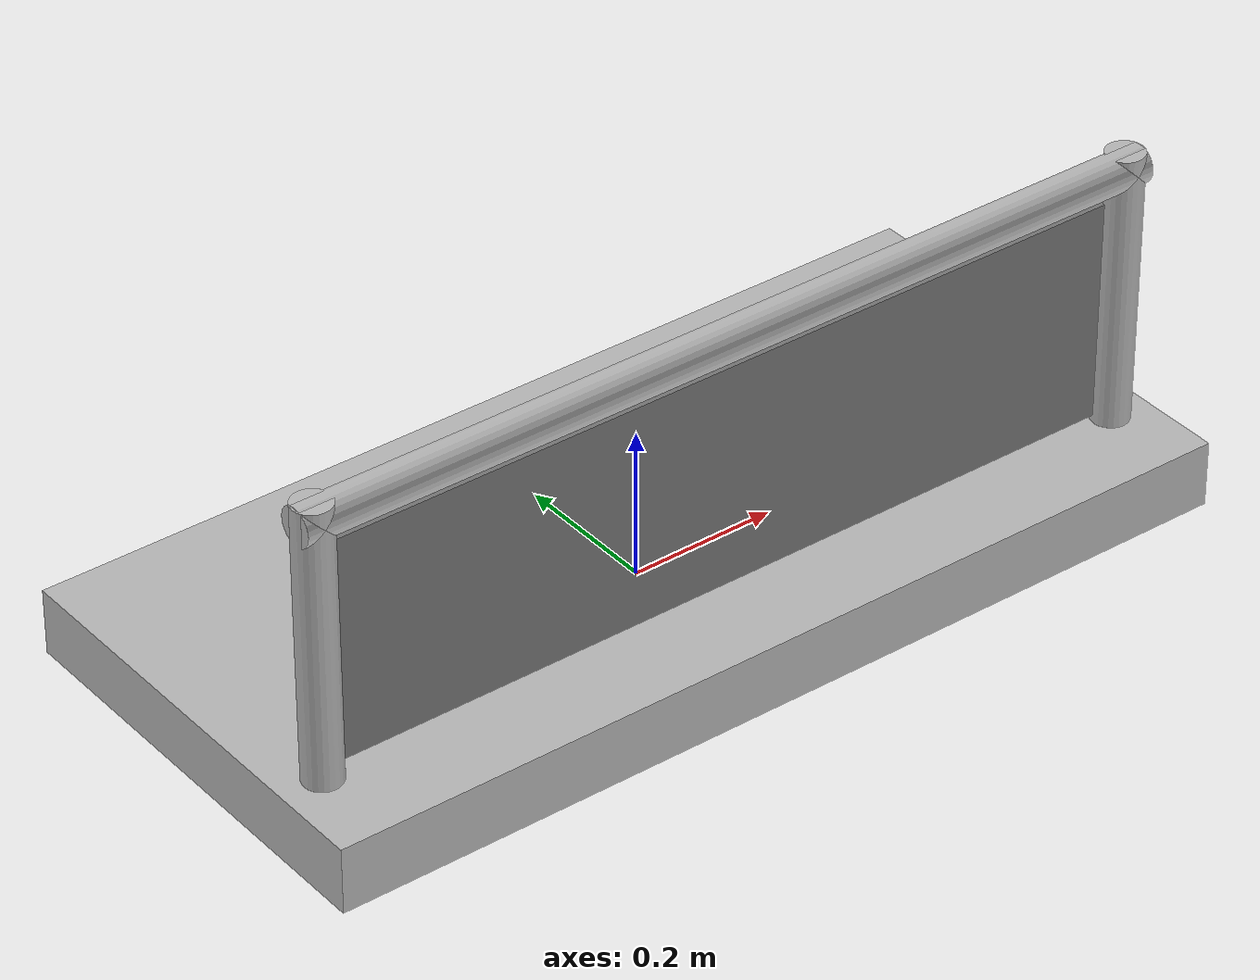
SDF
<?xml version="1.0" ?>
<sdf version="1.5">
  <model name="frc2016_lowbar">
    <link name='base'>
        <inertial>
          <mass>50</mass>
          <inertia>
            <ixx>0.035543</ixx>
            <ixy>0</ixy>
            <ixz>0</ixz>
            <iyy>0.134412</iyy>
            <iyz>0</iyz>
            <izz>0.165376</izz>
          </inertia>
        </inertial>
        <visual name='platform'>
          <pose frame=''>0 0 0.039065 0 -0 0</pose>
          <geometry>
            <box>
             <size>1.27 0.60 0.089</size>
            </box>
          </geometry>
        </visual>
        <collision name='platform'>
          <pose frame=''>0 0 0.039065 0 -0 0</pose>
          <geometry>
            <box>
              <size>1.27 0.60 0.089</size>
            </box>
          </geometry>
          <max_contacts>10</max_contacts>
          <surface>
            <contact>
              <ode/>
            </contact>
            <bounce/>
            <friction>
              <ode/>
            </friction>
          </surface>
        </collision>
        <visual name='right_column'>
          <pose frame=''>-0.57845 -0.18464 0.26863 0 -0 0</pose>
          <geometry>
            <cylinder>
              <radius>0.0254</radius>
              <length>0.381</length>
            </cylinder>
          </geometry>
        </visual>
        <collision name='right_column'>
          <pose frame=''>-0.57845 -0.18464 0.26863 0 -0 0</pose>
          <geometry>
            <cylinder>
              <radius>0.0254</radius>
              <length>0.381</length>
            </cylinder>
          </geometry>
          <max_contacts>10</max_contacts>
          <surface>
            <contact>
              <ode/>
            </contact>
            <bounce/>
            <friction>
              <ode/>
            </friction>
          </surface>
        </collision>
        <visual name='left_column'>
          <pose frame=''>0.57845 -0.18464 0.26863 0 -0 0</pose>
          <geometry>
            <cylinder>
              <radius>0.0254</radius>
              <length>0.381</length>
            </cylinder>
          </geometry>
        </visual>
        <collision name='left_column'>
          <pose frame=''>0.57845 -0.18464 0.26863 0 -0 0</pose>
          <geometry>
            <cylinder>
              <radius>0.0254</radius>
              <length>0.381</length>
            </cylinder>
          </geometry>
          <max_contacts>10</max_contacts>
          <surface>
            <contact>
              <ode/>
            </contact>
            <bounce/>
            <friction>
              <ode/>
            </friction>
          </surface>
        </collision>
        <visual name='horizontal'>
          <pose frame=''>0 -0.18464 0.43556 0 1.5707 0</pose>
          <geometry>
            <cylinder>
              <radius>0.0254</radius>
              <length>1.2018</length>
            </cylinder>
          </geometry>
        </visual>
        <collision name='horizontal'>
          <pose frame=''>0 -0.18464 0.43556 0 1.5707 0</pose>
          <geometry>
            <cylinder>
              <radius>0.0254</radius>
              <length>1.2018</length>
            </cylinder>
          </geometry>
          <max_contacts>10</max_contacts>
          <surface>
            <contact>
              <ode/>
            </contact>
            <bounce/>
            <friction>
              <ode/>
            </friction>
          </surface>
        </collision>
        <self_collide>0</self_collide>
        <kinematic>0</kinematic>
        <gravity>1</gravity>
      </link>
      <link name='wall'>
        <pose frame=''>0 -0.1778 0.24323 0 -0 0</pose>
        <inertial>
          <mass>1</mass>
          <inertia>
            <ixx>0.00774528</ixx>
            <ixy>0</ixy>
            <ixz>0</ixz>
            <iyy>0.116613</iyy>
            <iyz>0</iyz>
            <izz>0.108874</izz>
          </inertia>
        </inertial>
        <visual name='visual'>
          <geometry>
            <box>
              <size>1.1176 0.00635 0.3</size>
            </box>
          </geometry>
          <material>
            <ambient>0.46 0.46 0.46 1</ambient>
            <diffuse>0.46 0.46 0.46 1</diffuse>
          </material>
        </visual>
        <collision name='collision'>
          <geometry>
            <box>
              <size>1.143 0.00635 0.3</size>
            </box>
          </geometry>
          <max_contacts>10</max_contacts>
          <surface>
            <contact>
              <ode/>
            </contact>
            <bounce/>
            <friction>
              <ode/>
            </friction>
          </surface>
        </collision>
        <self_collide>0</self_collide>
        <kinematic>0</kinematic>
        <gravity>1</gravity>
      </link>
      <joint name='bar_joint' type='revolute'>
        <pose frame=''>0 0 0.36378 0 -0 0</pose>
        <parent>base</parent>
        <child>wall</child>
        <axis>
          <xyz>1 0 0</xyz>
          <limit>
            <lower>-1.5707</lower>
            <upper>1.5707</upper>
          </limit>
          <use_parent_model_frame>0</use_parent_model_frame>
          <dynamics>
            <damping>1</damping>
            <friction>1</friction>
            <spring_reference>0</spring_reference>
            <spring_stiffness>0</spring_stiffness>
          </dynamics>
        </axis>
      </joint>
  </model>
</sdf>
